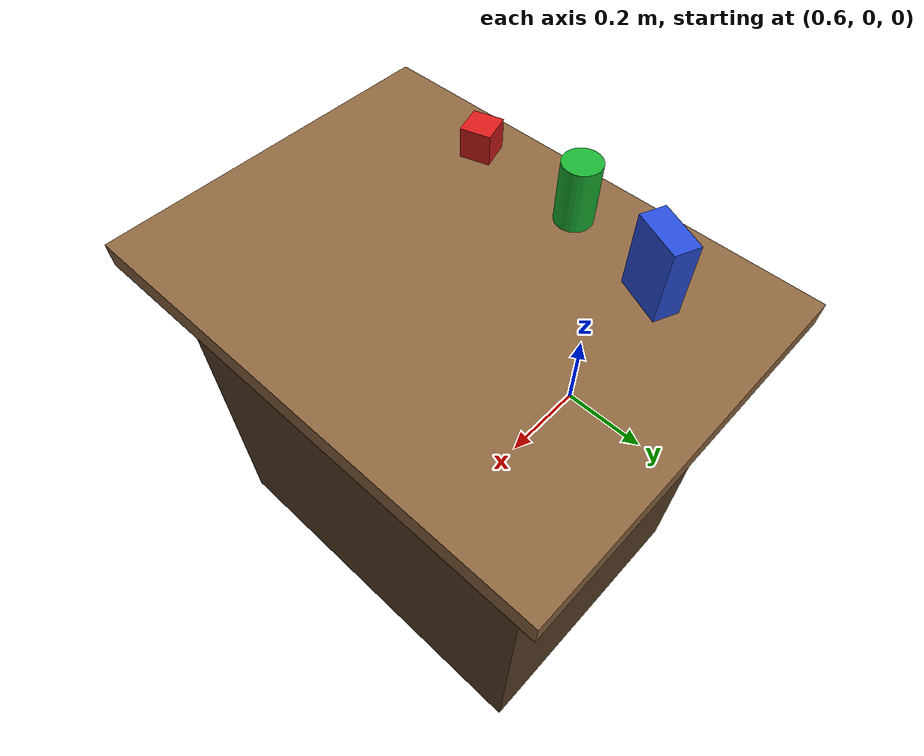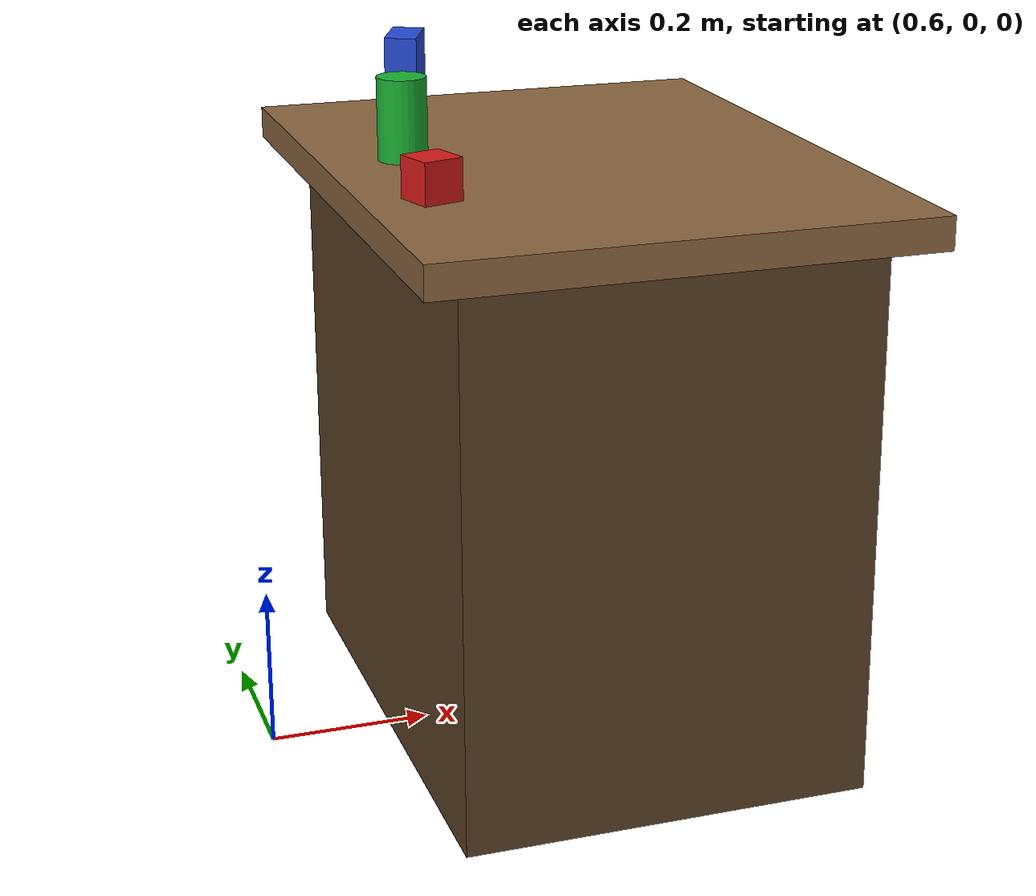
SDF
<?xml version="1.0"?>
<sdf version="1.6">
  <model name="mesa_prueba">
    <static>false</static>
    <!-- self_collide: por defecto Gazebo NO hace chocar los links de un mismo modelo, y los objetos
         atravesarían la mesa hasta el suelo. Con true chocan entre sí como cuerpos separados. -->
    <self_collide>true</self_collide>
    <!-- Mesa: tablero de 0.6 x 0.8 m a 0.72 m de alto, sobre un bloque (pata) más chico. -->
    <link name="mesa">
      <pose>1.0 0 0 0 0 0</pose>
      <inertial>
        <pose>0 0 0.36 0 0 0</pose>
        <mass>30.0</mass>
        <inertia><ixx>3.0</ixx><iyy>3.0</iyy><izz>3.0</izz><ixy>0</ixy><ixz>0</ixz><iyz>0</iyz></inertia>
      </inertial>
      <collision name="tablero_c"><pose>0 0 0.70 0 0 0</pose>
        <geometry><box><size>0.6 0.8 0.04</size></box></geometry></collision>
      <visual name="tablero_v"><pose>0 0 0.70 0 0 0</pose>
        <geometry><box><size>0.6 0.8 0.04</size></box></geometry>
        <material><ambient>0.55 0.4 0.25 1</ambient><diffuse>0.55 0.4 0.25 1</diffuse></material></visual>
      <collision name="pata_c"><pose>0 0 0.34 0 0 0</pose>
        <geometry><box><size>0.5 0.7 0.68</size></box></geometry></collision>
      <visual name="pata_v"><pose>0 0 0.34 0 0 0</pose>
        <geometry><box><size>0.5 0.7 0.68</size></box></geometry>
        <material><ambient>0.35 0.25 0.15 1</ambient><diffuse>0.35 0.25 0.15 1</diffuse></material></visual>
    </link>

    <!-- Cubo rojo de 5 cm (100 g). Inercia de un cubo: m a² / 6. -->
    <link name="cubo_rojo">
      <pose>0.78 -0.15 0.745 0 0 0.3</pose>
      <inertial><mass>0.1</mass>
        <inertia><ixx>4.2e-5</ixx><iyy>4.2e-5</iyy><izz>4.2e-5</izz><ixy>0</ixy><ixz>0</ixz><iyz>0</iyz></inertia>
      </inertial>
      <collision name="c"><geometry><box><size>0.05 0.05 0.05</size></box></geometry></collision>
      <visual name="v"><geometry><box><size>0.05 0.05 0.05</size></box></geometry>
        <material><ambient>0.85 0.1 0.1 1</ambient><diffuse>0.85 0.1 0.1 1</diffuse></material></visual>
    </link>

    <!-- Cilindro verde de 3 cm de radio y 10 cm de alto (150 g). -->
    <link name="cilindro_verde">
      <pose>0.80 0.05 0.77 0 0 0</pose>
      <inertial><mass>0.15</mass>
        <inertia><ixx>1.6e-4</ixx><iyy>1.6e-4</iyy><izz>6.8e-5</izz><ixy>0</ixy><ixz>0</ixz><iyz>0</iyz></inertia>
      </inertial>
      <collision name="c"><geometry><cylinder><radius>0.03</radius><length>0.10</length></cylinder></geometry></collision>
      <visual name="v"><geometry><cylinder><radius>0.03</radius><length>0.10</length></cylinder></geometry>
        <material><ambient>0.1 0.7 0.2 1</ambient><diffuse>0.1 0.7 0.2 1</diffuse></material></visual>
    </link>

    <!-- Caja azul de 4 x 8 x 12 cm (150 g), de pie. -->
    <link name="caja_azul">
      <pose>0.85 0.22 0.78 0 0 -0.4</pose>
      <inertial><mass>0.15</mass>
        <inertia><ixx>2.6e-4</ixx><iyy>2.0e-4</iyy><izz>1.0e-4</izz><ixy>0</ixy><ixz>0</ixz><iyz>0</iyz></inertia>
      </inertial>
      <collision name="c"><geometry><box><size>0.04 0.08 0.12</size></box></geometry></collision>
      <visual name="v"><geometry><box><size>0.04 0.08 0.12</size></box></geometry>
        <material><ambient>0.15 0.3 0.85 1</ambient><diffuse>0.15 0.3 0.85 1</diffuse></material></visual>
    </link>
  </model>
</sdf>
